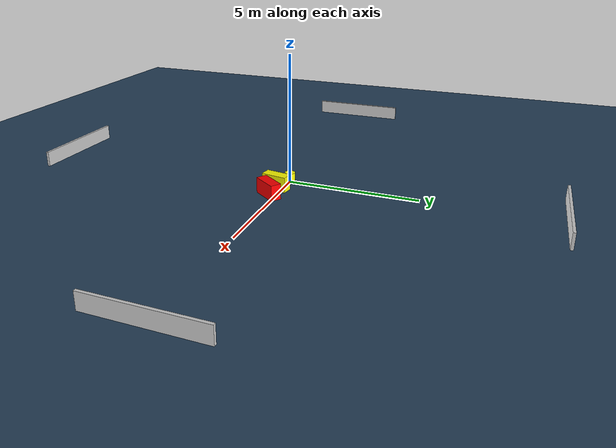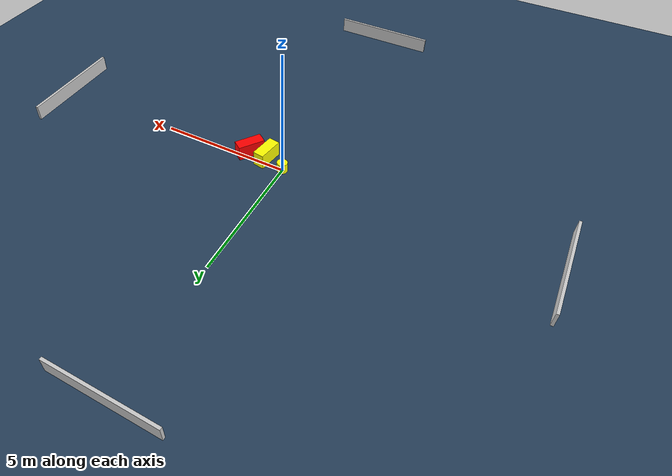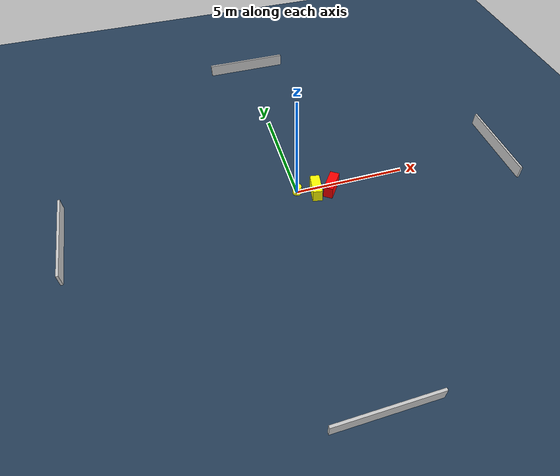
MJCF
<?xml version="1.0" ?>
<mujoco model="generated_environment">
  <option timestep="0.01" integrator="RK4" cone="elliptic"/>
  <default>
    <geom density="1"/>
  </default>
  <asset>
    <texture builtin="gradient" height="3072" name="skybox" rgb1="0.3 0.5 0.7" rgb2="0 0 0" type="skybox" width="512"/>
    <texture builtin="checker" height="300" name="groundplane" rgb1="0.2 0.3 0.4" rgb2="0.1 0.2 0.3" type="2d" width="300"/>
    <material name="groundplane" reflectance="0.2" texrepeat="5 5" texture="groundplane"/>
  </asset>
  <worldbody>
    <light dir="0 0 -1" directional="true" pos="0 0 1.5"/>
    <geom condim="3" friction="0.5 0.005 0.001" material="groundplane" name="floor" pos="0 0 0" size="0 0 0.05" type="plane"/>
    <body name="walls">
      <geom name="wall_1" condim="4" pos="-10.0 0.0 0.3" rgba="0.800000011920929 0.800000011920929 0.800000011920929 1.0" size="0.05 2.0 0.3" type="box"/>
      <geom name="wall_2" condim="4" pos="10.0 0.0 0.3" rgba="0.800000011920929 0.800000011920929 0.800000011920929 1.0" size="0.05 2.0 0.3" type="box"/>
      <geom name="wall_3" condim="4" pos="0.0 -10.0 0.3" rgba="0.800000011920929 0.800000011920929 0.800000011920929 1.0" size="2.0 0.05 0.3" type="box"/>
      <geom name="wall_4" condim="4" pos="0.0 10.0 0.3" rgba="0.800000011920929 0.800000011920929 0.800000011920929 1.0" size="2.0 0.05 0.3" type="box"/>
    </body>
    <body name="robot">
      <joint name="joint_x" type="slide" pos="0 0 0" axis="1 0 0"/>
      <joint name="joint_y" type="slide" pos="0 0 0" axis="0 1 0"/>
      <geom name="robot" type="cylinder" pos="0.0 0.0 0.2" size="0.2 0.2 0.0" mass="5.0" friction="1.0 0.005 0.0001" condim="4" rgba="1.0 1.0 0.0 1.0"/>
    </body>
    <body name="obstacle_1_movable">
      <geom name="obstacle_1_movable" condim="4" pos="0.8044634767919997 -0.2508295052436724 0.3" euler="0 0 171.01322706166812" friction="0.0 0.005 0.001" rgba="1.0 1.0 0.0 1.0" size="0.21362303186901188 0.49152155367966177 0.3" type="box" mass="0.1"/>
      <joint type="free"/>
    </body>
    <body name="obstacle_2_static">
      <geom name="obstacle_2_static" condim="4" pos="1.5185563131062558 -0.25638906876064294 0.3" euler="0 0 324.0878184368475" friction="0.0 0.005 0.001" rgba="1.0 0.0 0.0 1.0" size="0.2088994837139996 0.5115409096176452 0.3" type="box"/>
    </body>
  </worldbody>
  <actuator>
    <motor name="actuator_x" joint="joint_x" gear="1" ctrlrange="-1 1"/>
    <motor name="actuator_y" joint="joint_y" gear="1" ctrlrange="-1 1"/>
  </actuator>
</mujoco>
